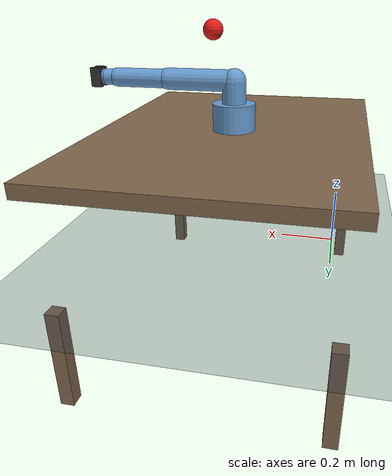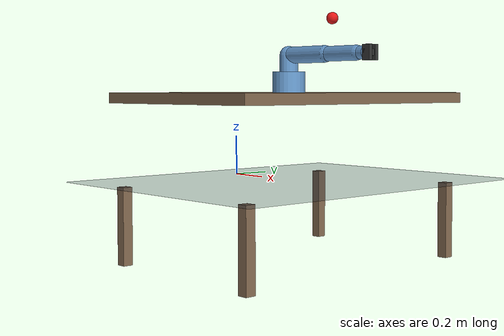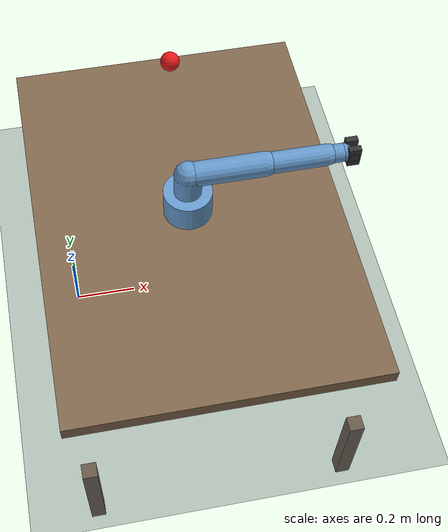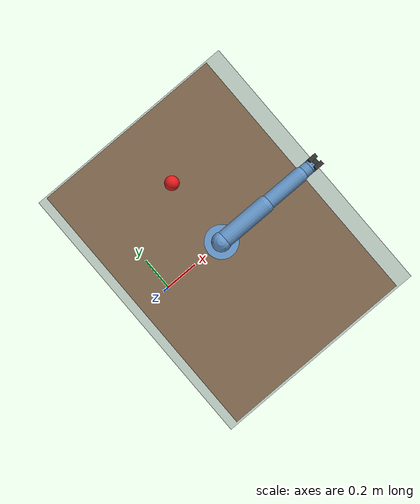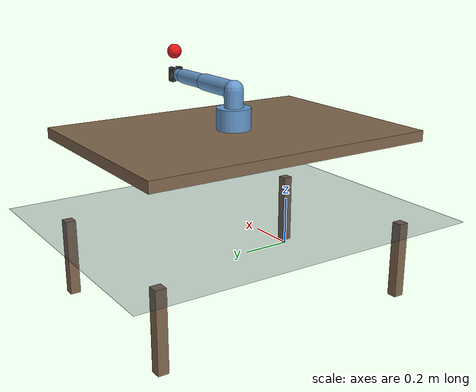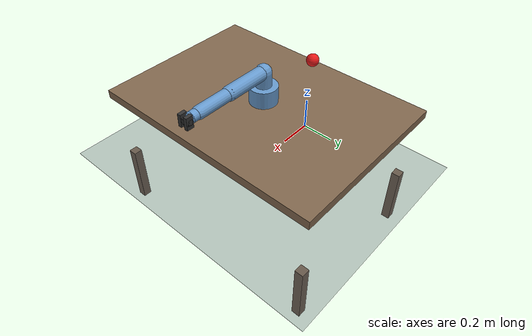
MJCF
<mujoco model="robot_arm_throw_catch">

    <compiler angle="degree" coordinate="local" inertiafromgeom="true" texturedir="textures/"/>

    <option integrator="RK4" timestep="0.002" gravity="0 0 -9.81">
      <flag contact="enable" energy="enable" warmstart="enable"/>
    </option>

    <visual>
      <headlight ambient="0.1 0.1 0.1" diffuse="0.6 0.6 0.6" specular="0.3 0.3 0.3"/>
      <map force="0.1" zfar="30"/>
      <quality shadowsize="4096"/>
      <global offwidth="2560" offheight="1440"/>
    </visual>

    <asset>
      <texture type="skybox" builtin="gradient" rgb1="0.3 0.5 0.7" rgb2="0 0 0" width="512" height="512"/>
      <material name="robot_mat" specular="0.5" shininess="0.5" rgba="0.4 0.6 0.8 1"/>
      <material name="gripper_mat" specular="0.5" shininess="0.5" rgba="0.2 0.2 0.2 1"/>
      <material name="ball_mat" specular="0.8" shininess="0.8" rgba="0.9 0.1 0.1 1"/>
      <material name="floor_mat" specular="0.1" shininess="0.1" rgba="0.2 0.25 0.3 1"/>
      <material name="table_mat" specular="0.3" shininess="0.2" rgba="0.5 0.4 0.3 1"/>
    </asset>

    <default>
      <joint armature="0.01" damping="0.1" limited="true"/>
      <geom type="capsule" material="robot_mat" condim="3" friction="0.8 0.1 0.1" solimp="0.99 0.99 0.01" solref="0.01 1"/>
      <motor ctrllimited="true"/>
      <position ctrllimited="true" kp="100"/> <default class="arm_link">
        <geom type="capsule" size="0.04" material="robot_mat"/>
        <joint type="hinge" damping="2" armature="0.02"/>
      </default>
      <default class="gripper_finger">
        <geom type="box" size="0.02 0.01 0.035" material="gripper_mat" condim="4" friction="1.5 0.2 0.2" solimp="0.99 0.99 0.01" solref="0.01 1"/>
        <joint type="slide" damping="1" armature="0.002"/>
      </default>
    </default>

    <worldbody>
      <geom name="floor" type="plane" size="3 3 0.1" material="floor_mat" condim="3"/>
      <light name="top_light" pos="0 0 3" dir="0 0 -1" diffuse="0.9 0.9 0.9" specular="0.1 0.1 0.1" castshadow="true"/>
      <light name="front_light" pos="1 1 1.5" dir="-1 -1 -1" diffuse="0.4 0.4 0.4" specular="0.05 0.05 0.05" castshadow="false"/>

      <body name="table" pos="0.4 0 0"> <geom name="table_top" type="box" size="0.5 0.7 0.025" pos="0 0 0.4" material="table_mat" condim="3"/>
        <geom name="leg1" type="box" size="0.025 0.025 0.1875" pos="0.45 0.65 -0.2125" material="table_mat"/>
        <geom name="leg2" type="box" size="0.025 0.025 0.1875" pos="-0.45 0.65 -0.2125" material="table_mat"/>
        <geom name="leg3" type="box" size="0.025 0.025 0.1875" pos="0.45 -0.65 -0.2125" material="table_mat"/>
        <geom name="leg4" type="box" size="0.025 0.025 0.1875" pos="-0.45 -0.65 -0.2125" material="table_mat"/>
      </body>

      <body name="base_static" pos="0.4 0 0.475"> <geom name="base_geom_static" type="cylinder" size="0.08 0.05" material="robot_mat" mass="2"/> <body name="link1_shoulder_yaw" pos="0 0 0.05"> <joint name="j_shoulder_yaw" type="hinge" axis="0 0 1" range="-180 180" class="arm_link" damping="5"/>
              <geom name="g_shoulder_yaw" fromto="0 0 0 0 0 0.08" size="0.045" class="arm_link"/>

              <body name="link2_shoulder_pitch" pos="0 0 0.08"> <joint name="j_shoulder_pitch" type="hinge" axis="0 1 0" range="-90 90" class="arm_link" damping="5"/>
                  <geom name="g_upper_arm" fromto="0 0 0 0.25 0 0" size="0.04" class="arm_link"/> <body name="link3_elbow_pitch" pos="0.25 0 0"> <joint name="j_elbow_pitch" type="hinge" axis="0 1 0" range="-150 0" class="arm_link" damping="3"/>
                      <geom name="g_forearm" fromto="0 0 0 0.20 0 0" size="0.035" class="arm_link"/> <body name="link4_wrist_pitch" pos="0.20 0 0"> <joint name="j_wrist_pitch" type="hinge" axis="0 1 0" range="-70 70" class="arm_link" damping="1"/>
                          <geom name="g_wrist_segment1" fromto="0 0 0 0.05 0 0" size="0.03" class="arm_link"/>

                          <body name="link5_wrist_roll" pos="0.05 0 0"> <joint name="j_wrist_roll" type="hinge" axis="1 0 0" range="-180 180" class="arm_link" damping="1"/>
                              <geom name="g_wrist_segment2_connector" type="sphere" size="0.03" material="robot_mat"/> <body name="gripper_base" pos="0.03 0 0"> <geom name="g_gripper_mount" type="box" size="0.015 0.03 0.015" material="gripper_mat" mass="0.05"/>

                                  <body name="gripper_finger_left" pos="0 0.015 0"> <joint name="j_finger_left" axis="0 1 0" range="0 0.045" class="gripper_finger"/> <geom name="g_finger_left" pos="0 0.005 0" class="gripper_finger"/> <site name="left_contact_site" pos="0 0 0" size="0.01 0.005 0.015" type="box" rgba="1 0 0 0.3"/> </body>

                                  <body name="gripper_finger_right" pos="0 -0.015 0"> <joint name="j_finger_right" axis="0 -1 0" range="0 0.045" class="gripper_finger"/> <geom name="g_finger_right" pos="0 -0.005 0" class="gripper_finger"/> <site name="right_contact_site" pos="0 0 0" size="0.01 0.005 0.015" type="box" rgba="0 1 0 0.3"/> </body>
                              </body>
                          </body>
                      </body>
                  </body>
              </body>
          </body>
      </body>

      <body name="ball" pos="0.4 0.3 0.8"> <joint name="ball_joint" type="free" damping="0.005" armature="0.0001"/>
          <geom name="g_ball" type="sphere" size="0.03" material="ball_mat" condim="3" friction="0.7 0.1 0.1" mass="0.05" solimp="0.99 0.99 0.01" solref="0.01 1"/>
          <site name="s_ball_center" type="sphere" size="0.001" rgba="0 0 0 0"/> </body>

    </worldbody>

    <equality>
      <joint joint1="j_finger_left" joint2="j_finger_right" polycoef="0 1 0 0 0"/>
    </equality>

    <actuator>
      <position name="a_shoulder_yaw" joint="j_shoulder_yaw" kp="250" gear="1" ctrlrange="-180 180"/>
      <position name="a_shoulder_pitch" joint="j_shoulder_pitch" kp="250" gear="1" ctrlrange="-90 90"/>
      <position name="a_elbow_pitch" joint="j_elbow_pitch" kp="200" gear="1" ctrlrange="-150 0"/>
      <position name="a_wrist_pitch" joint="j_wrist_pitch" kp="100" gear="1" ctrlrange="-70 70"/>
      <position name="a_wrist_roll" joint="j_wrist_roll" kp="80" gear="1" ctrlrange="-180 180"/>

      <position name="a_gripper" joint="j_finger_left" kp="50" gear="1" ctrlrange="0 0.045"/> </actuator>

    <sensor>
      <jointpos name="s_j_shoulder_yaw" joint="j_shoulder_yaw"/>
      <jointpos name="s_j_shoulder_pitch" joint="j_shoulder_pitch"/>
      <jointpos name="s_j_elbow_pitch" joint="j_elbow_pitch"/>
      <jointpos name="s_j_wrist_pitch" joint="j_wrist_pitch"/>
      <jointpos name="s_j_wrist_roll" joint="j_wrist_roll"/>
      <jointpos name="s_j_gripper" joint="j_finger_left"/> <jointvel name="s_v_shoulder_yaw" joint="j_shoulder_yaw"/>
      <jointvel name="s_v_shoulder_pitch" joint="j_shoulder_pitch"/>
      <jointvel name="s_v_elbow_pitch" joint="j_elbow_pitch"/>

      <touch name="s_touch_left" site="left_contact_site"/>
      <touch name="s_touch_right" site="right_contact_site"/>

      <framepos name="s_ball_pos" objtype="body" objname="ball"/>
      <framelinvel name="s_ball_linvel" objtype="body" objname="ball"/>
      <frameangvel name="s_ball_angvel" objtype="body" objname="ball"/>

      <framepos name="s_eef_pos" objtype="body" objname="gripper_base"/>
      <framequat name="s_eef_quat" objtype="body" objname="gripper_base"/>
      <framelinvel name="s_eef_linvel" objtype="body" objname="gripper_base"/>
      <frameangvel name="s_eef_angvel" objtype="body" objname="gripper_base"/>
    </sensor>

  </mujoco>
